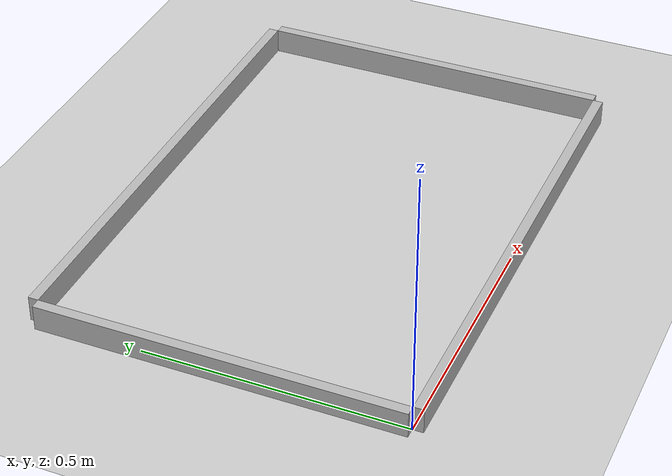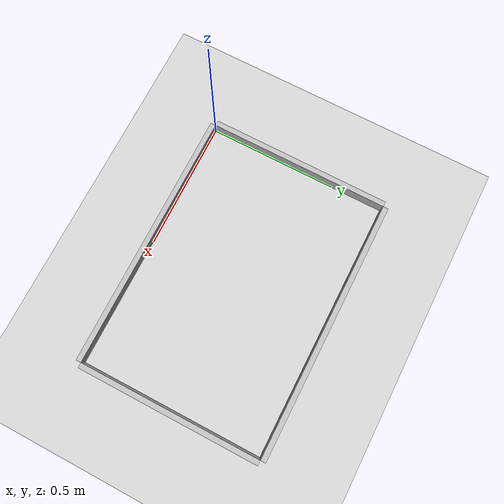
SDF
<sdf version="1.5">
 <world name="default">
  <include><uri>model://sun</uri></include>
  <include><uri>model://ground_plane</uri></include>
  <model name="left_wall">
   <pose>-0.01 0.35 0.025 0 0 0</pose>
   <static>true</static>
   <link name="link">
    <collision name="collision"><geometry><box><size>0.02 0.7 0.05</size></box></geometry></collision>
    <visual name="visual"><geometry><box><size>0.02 0.7 0.05</size></box></geometry></visual>
   </link>
  </model>
  <model name="right_wall">
   <pose>1.01 0.35 0.025 0 0 0</pose>
   <static>true</static>
   <link name="link">
    <collision name="collision"><geometry><box><size>0.02 0.7 0.05</size></box></geometry></collision>
    <visual name="visual"><geometry><box><size>0.02 0.7 0.05</size></box></geometry></visual>
   </link>
  </model>
  <model name="front_wall">
   <pose>0.5 -0.01 0.025 0 0 0</pose>
   <static>true</static>
   <link name="link">
    <collision name="collision"><geometry><box><size>1 0.02 0.05</size></box></geometry></collision>
    <visual name="visual"><geometry><box><size>1 0.02 0.05</size></box></geometry></visual>
   </link>
  </model>
  <model name="back_wall">
   <pose>0.5 0.71 0.025 0 0 0</pose>
   <static>true</static>
   <link name="link">
    <collision name="collision"><geometry><box><size>1 0.02 0.05</size></box></geometry></collision>
    <visual name="visual"><geometry><box><size>1 0.02 0.05</size></box></geometry></visual>
   </link>
  </model>
 </world>
</sdf>
